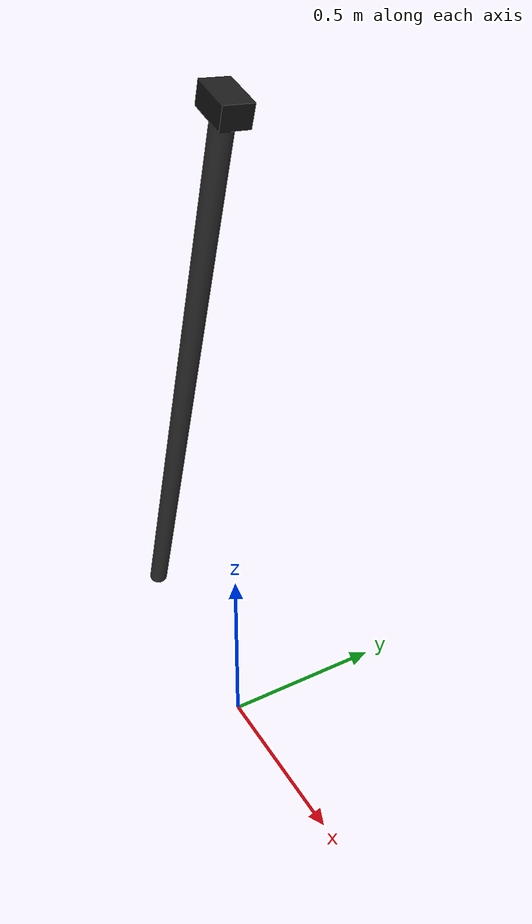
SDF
<?xml version="1.0"?>
<sdf version="1.9">
  <model name="camera_rig">
    <static>true</static>

    <link name="camera_link">
      <pose>0 0 1.8 0 0.35 0</pose>

      <visual name="mast_visual">
        <pose>0 0 -0.9 0 0 0</pose>
        <geometry>
          <cylinder>
            <radius>0.03</radius>
            <length>1.8</length>
          </cylinder>
        </geometry>
        <material>
          <ambient>0.15 0.15 0.15 1</ambient>
          <diffuse>0.20 0.20 0.20 1</diffuse>
        </material>
      </visual>

      <visual name="head_visual">
        <geometry>
          <box>
            <size>0.12 0.08 0.06</size>
          </box>
        </geometry>
        <material>
          <ambient>0.05 0.05 0.05 1</ambient>
          <diffuse>0.1 0.1 0.1 1</diffuse>
        </material>
      </visual>

      <collision name="head_collision">
        <geometry>
          <box>
            <size>0.12 0.08 0.06</size>
          </box>
        </geometry>
      </collision>

      <sensor name="camera" type="camera">
        <pose>0.08 0 0 0 0 0</pose>
        <always_on>true</always_on>
        <update_rate>30</update_rate>
        <visualize>false</visualize>
        <topic>/camera/image_raw</topic>
        <camera>
          <horizontal_fov>1.047</horizontal_fov>
          <image>
            <width>1280</width>
            <height>720</height>
            <format>R8G8B8</format>
          </image>
          <clip>
            <near>0.1</near>
            <far>100.0</far>
          </clip>
        </camera>
      </sensor>

      <inertial>
        <mass>1.0</mass>
        <inertia>
          <ixx>0.01</ixx>
          <iyy>0.01</iyy>
          <izz>0.01</izz>
          <ixy>0.0</ixy>
          <ixz>0.0</ixz>
          <iyz>0.0</iyz>
        </inertia>
      </inertial>
    </link>
  </model>
</sdf>
